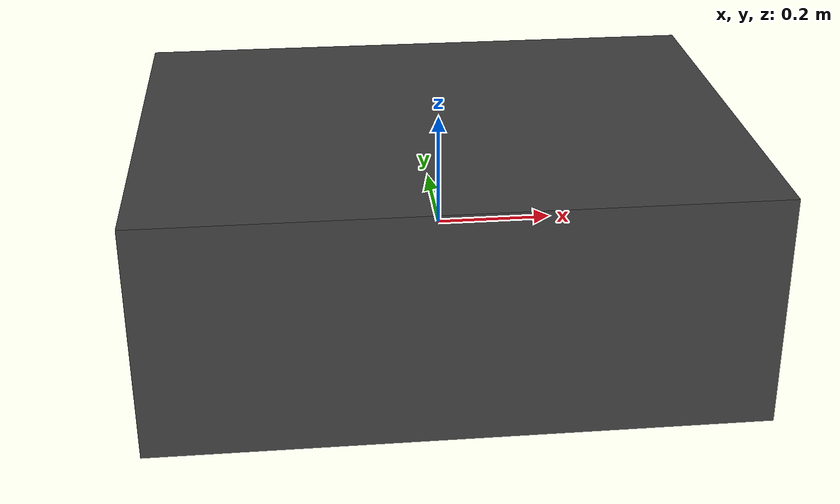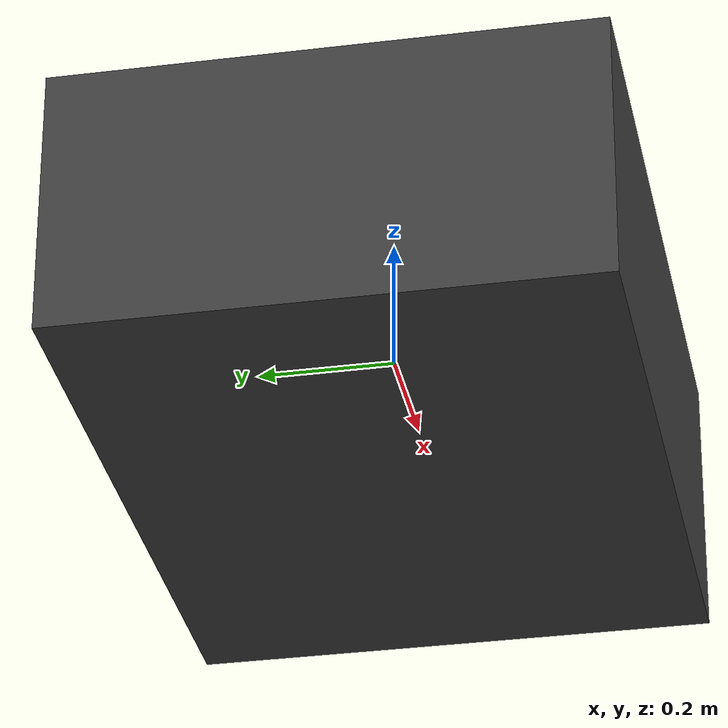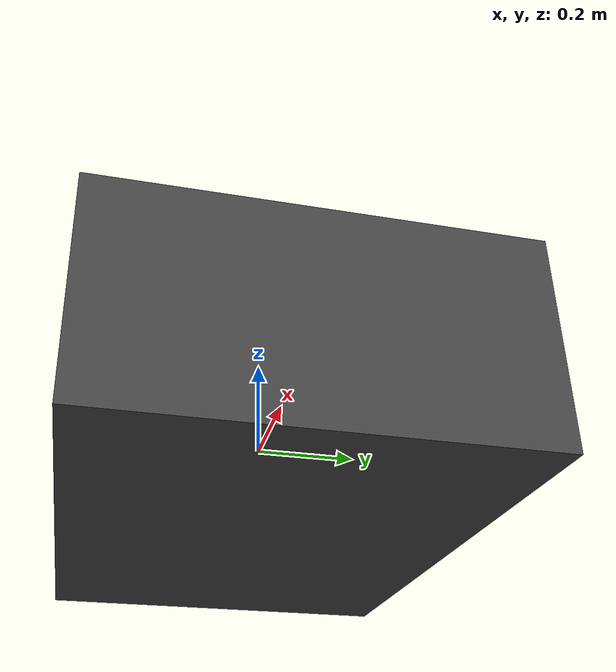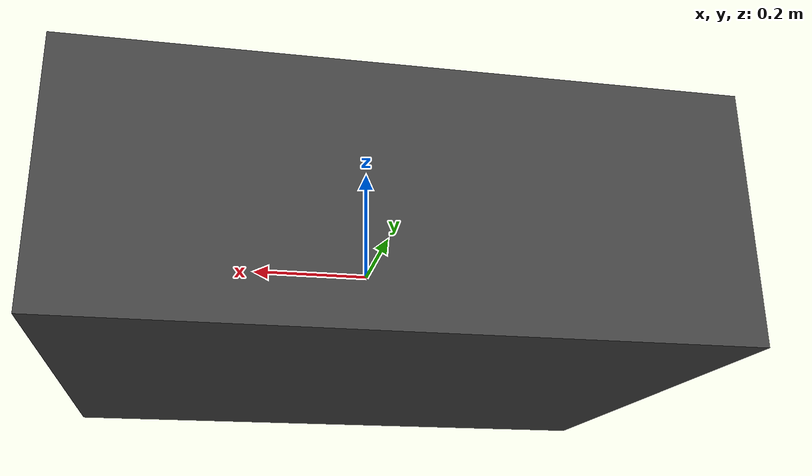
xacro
<?xml version="1.0"?>
<robot name="agt_bunker_sim" xmlns:xacro="http://www.ros.org/wiki/xacro">
  <link name="base_link">
    <inertial>
      <origin xyz="0 0 0" rpy="0 0 0"/>
      <mass value="80.0"/>
      <inertia ixx="6.0" ixy="0" ixz="0" iyy="8.0" iyz="0" izz="10.0"/>
    </inertial>
    <collision><geometry><box size="1.023 0.778 0.400"/></geometry></collision>
    <visual>
      <geometry><box size="1.023 0.778 0.400"/></geometry>
      <material name="gray"><color rgba="0.25 0.25 0.25 1"/></material>
    </visual>
  </link>

  <link name="imu_link">
    <inertial>
      <mass value="0.05"/>
      <inertia ixx="0.0001" ixy="0" ixz="0" iyy="0.0001" iyz="0" izz="0.0001"/>
    </inertial>
  </link>
  <joint name="base_to_imu" type="fixed">
    <parent link="base_link"/><child link="imu_link"/>
    <origin xyz="0.40520677 -0.02329000 0.77246367" rpy="0 0.22689280 0"/>
  </joint>

  <!-- Batch-LIO production extrinsic_T: IMU/body -> LiDAR. -->
  <link name="livox_frame"/>
  <joint name="imu_to_livox" type="fixed">
    <parent link="imu_link"/><child link="livox_frame"/>
    <origin xyz="0.011 0.02329 -0.04412" rpy="0 0 0"/>
  </joint>

  <gazebo>
    <plugin name="agt_planar_move" filename="libgazebo_ros_planar_move.so">
      <ros>
        <remapping>cmd_vel:=/mux/cmd_vel</remapping>
        <remapping>odom:=/sim/ground_truth_odom</remapping>
      </ros>
      <update_rate>100</update_rate>
      <publish_rate>50</publish_rate>
      <publish_odom>true</publish_odom>
      <publish_odom_tf>false</publish_odom_tf>
      <odometry_frame>sim_world</odometry_frame>
      <robot_base_frame>base_link</robot_base_frame>
      <covariance_x>0.000001</covariance_x>
      <covariance_y>0.000001</covariance_y>
      <covariance_yaw>0.00001</covariance_yaw>
    </plugin>
  </gazebo>

  <gazebo reference="imu_link">
    <sensor name="imu_sensor" type="imu">
      <always_on>true</always_on><update_rate>200</update_rate><visualize>false</visualize>
      <plugin name="agt_gazebo_imu" filename="libgazebo_ros_imu_sensor.so">
        <ros><remapping>~/out:=/sim/imu/data</remapping></ros>
        <initial_orientation_as_reference>false</initial_orientation_as_reference>
      </plugin>
    </sensor>
  </gazebo>

  <gazebo reference="livox_frame">
    <sensor type="ray" name="livox_frame">
      <pose>0 0 0 0 0 0</pose><always_on>true</always_on><visualize>false</visualize><update_rate>10</update_rate>
      <plugin name="agt_mid360_plugin" filename="libros2_livox.so">
        <ray>
          <scan>
            <horizontal><samples>100</samples><resolution>1</resolution><min_angle>0</min_angle><max_angle>6.283185307</max_angle></horizontal>
            <vertical><samples>360</samples><resolution>1</resolution><min_angle>-0.126013</min_angle><max_angle>0.963770</max_angle></vertical>
          </scan>
          <range><min>0.3</min><max>40.0</max><resolution>0.01</resolution></range>
          <noise><type>gaussian</type><mean>0.0</mean><stddev>0.002</stddev></noise>
        </ray>
        <samples>8000</samples><downsample>1</downsample><scan_period_sec>0.1</scan_period_sec>
        <csv_file_name>$(find ros2_livox_simulation)/scan_mode/mid360.csv</csv_file_name>
        <topic>/agt/sensors/lidar/custom</topic>
      </plugin>
    </sensor>
  </gazebo>
</robot>
